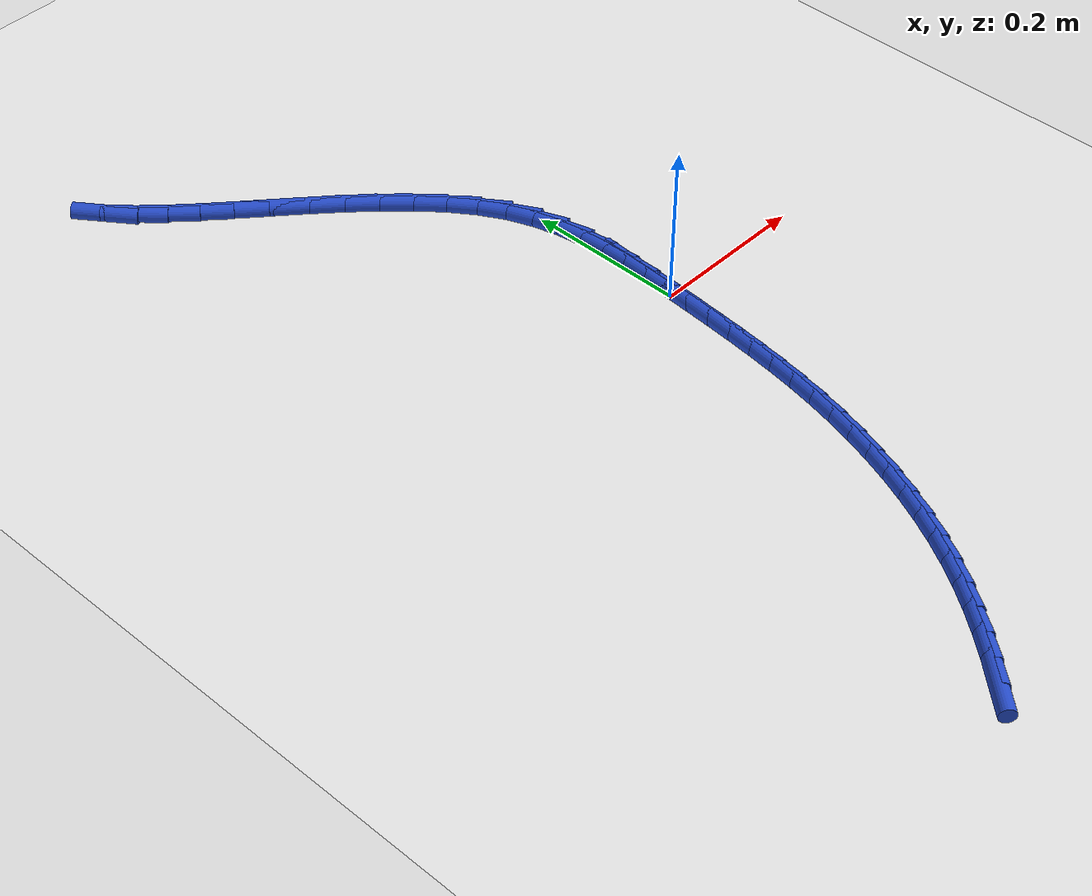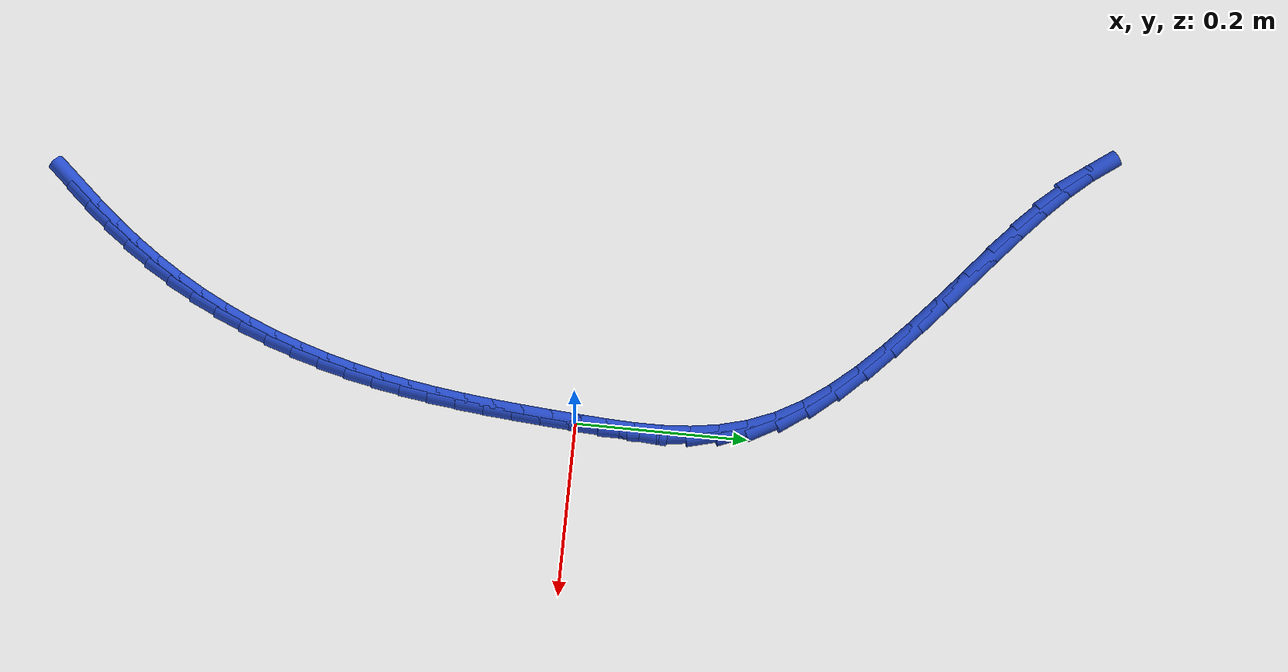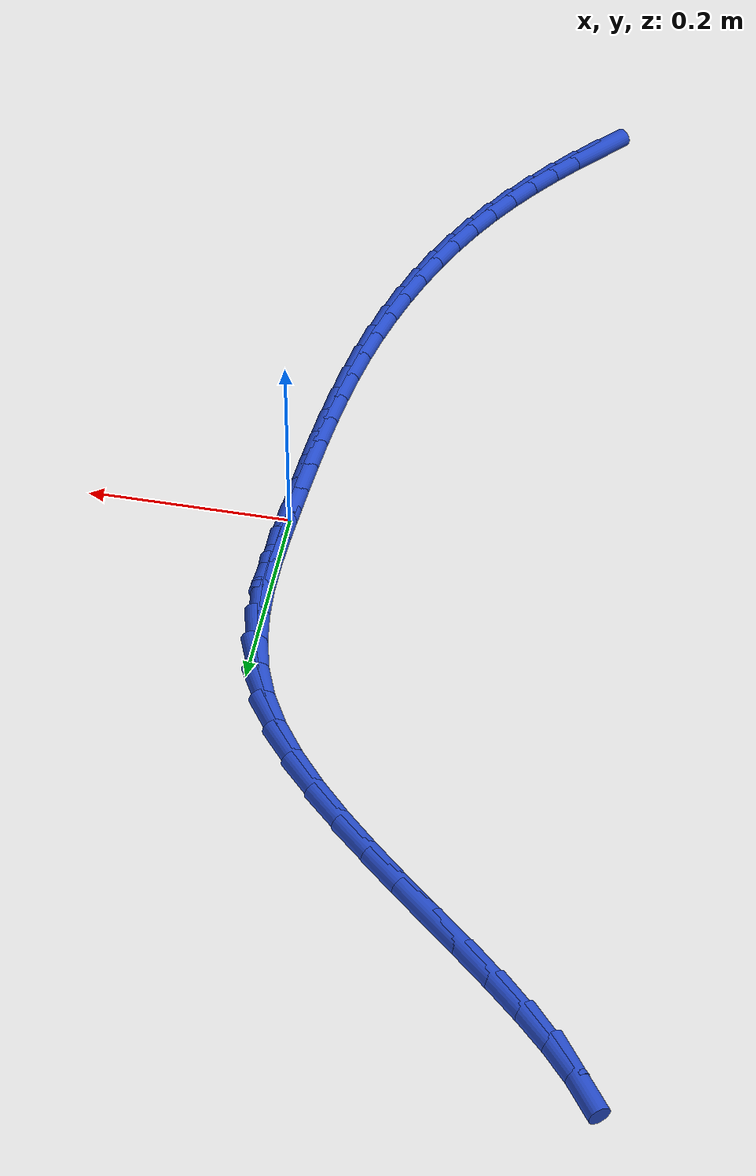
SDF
<sdf version="1.6">
 <world name="default">
  <model name="ground_plane">
   <static>1</static>
   <link name="link">
    <collision name="collision">
     <geometry><plane><normal>0 0 1</normal><size>100 100</size></plane></geometry>
     <surface><friction><ode><mu>100</mu><mu2>50</mu2></ode></friction></surface>
    </collision>
    <visual name="visual">
     <cast_shadows>0</cast_shadows>
     <geometry><plane><normal>0 0 1</normal><size>100 100</size></plane></geometry>
     <material>
      <script><uri>file://media/materials/scripts/gazebo.material</uri><name>Gazebo/WhiteGlow</name></script>
     </material>
    </visual>
   </link>
  </model>
  <model name="line">
   <link name="link_0">
    <pose>1.734723475976807e-18 -6.245004513516506e-17 0.01 0 1.57 1.5070492738437389</pose>
    <collision name="collision">
     <geometry><cylinder><radius>0.01</radius><length>0.08</length></cylinder></geometry>
    </collision>
    <visual name="visual">
     <material>
      <script><name>Gazebo/Blue</name><uri>file://media/materials/scripts/gazebo.material</uri></script>
     </material>
     <geometry><cylinder><radius>0.01</radius><length>0.08</length></cylinder></geometry>
    </visual>
   </link>
   <link name="link_1">
    <pose>0.002135402018232102 0.03345266330930316 0.01 0 1.57 1.5297991189124072</pose>
    <collision name="collision">
     <geometry><cylinder><radius>0.01</radius><length>0.08</length></cylinder></geometry>
    </collision>
    <visual name="visual">
     <material>
      <script><name>Gazebo/Blue</name><uri>file://media/materials/scripts/gazebo.material</uri></script>
     </material>
     <geometry><cylinder><radius>0.01</radius><length>0.08</length></cylinder></geometry>
    </visual>
   </link>
   <link name="link_2">
    <pose>0.0035087740667446364 0.06693305360533194 0.01 0 1.57 -1.5687584165227297</pose>
    <collision name="collision">
     <geometry><cylinder><radius>0.01</radius><length>0.08</length></cylinder></geometry>
    </collision>
    <visual name="visual">
     <material>
      <script><name>Gazebo/Blue</name><uri>file://media/materials/scripts/gazebo.material</uri></script>
     </material>
     <geometry><cylinder><radius>0.01</radius><length>0.08</length></cylinder></geometry>
    </visual>
   </link>
   <link name="link_3">
    <pose>0.0034407187152398306 0.10032768251573597 0.01 0 1.57 -1.5049523425660776</pose>
    <collision name="collision">
     <geometry><cylinder><radius>0.01</radius><length>0.08</length></cylinder></geometry>
    </collision>
    <visual name="visual">
     <material>
      <script><name>Gazebo/Blue</name><uri>file://media/materials/scripts/gazebo.material</uri></script>
     </material>
     <geometry><cylinder><radius>0.01</radius><length>0.08</length></cylinder></geometry>
    </visual>
   </link>
   <link name="link_4">
    <pose>0.0012518385334199114 0.1335230616681649 0.01 0 1.57 -1.4202202495845495</pose>
    <collision name="collision">
     <geometry><cylinder><radius>0.01</radius><length>0.08</length></cylinder></geometry>
    </collision>
    <visual name="visual">
     <material>
      <script><name>Gazebo/Blue</name><uri>file://media/materials/scripts/gazebo.material</uri></script>
     </material>
     <geometry><cylinder><radius>0.01</radius><length>0.08</length></cylinder></geometry>
    </visual>
   </link>
   <link name="link_5">
    <pose>-0.003737263909012894 0.16640570269026855 0.01 0 1.57 -1.3155611060862418</pose>
    <collision name="collision">
     <geometry><cylinder><radius>0.01</radius><length>0.08</length></cylinder></geometry>
    </collision>
    <visual name="visual">
     <material>
      <script><name>Gazebo/Blue</name><uri>file://media/materials/scripts/gazebo.material</uri></script>
     </material>
     <geometry><cylinder><radius>0.01</radius><length>0.08</length></cylinder></geometry>
    </visual>
   </link>
   <link name="link_6">
    <pose>-0.012205986042356357 0.19886211720969643 0.01 0 1.57 -1.1940483547402347</pose>
    <collision name="collision">
     <geometry><cylinder><radius>0.01</radius><length>0.08</length></cylinder></geometry>
    </collision>
    <visual name="visual">
     <material>
      <script><name>Gazebo/Blue</name><uri>file://media/materials/scripts/gazebo.material</uri></script>
     </material>
     <geometry><cylinder><radius>0.01</radius><length>0.08</length></cylinder></geometry>
    </visual>
   </link>
   <link name="link_7">
    <pose>-0.024833725296908263 0.23077881685409832 0.01 0 1.57 -1.0637630969239575</pose>
    <collision name="collision">
     <geometry><cylinder><radius>0.01</radius><length>0.08</length></cylinder></geometry>
    </collision>
    <visual name="visual">
     <material>
      <script><name>Gazebo/Blue</name><uri>file://media/materials/scripts/gazebo.material</uri></script>
     </material>
     <geometry><cylinder><radius>0.01</radius><length>0.08</length></cylinder></geometry>
    </visual>
   </link>
   <link name="link_8">
    <pose>-0.04220484899709303 0.26205164778055207 0.01 0 1.57 -0.9517172667167824</pose>
    <collision name="collision">
     <geometry><cylinder><radius>0.01</radius><length>0.08</length></cylinder></geometry>
    </collision>
    <visual name="visual">
     <material>
      <script><name>Gazebo/Blue</name><uri>file://media/materials/scripts/gazebo.material</uri></script>
     </material>
     <geometry><cylinder><radius>0.01</radius><length>0.08</length></cylinder></geometry>
    </visual>
   </link>
   <link name="link_9">
    <pose>-0.0640164712059616 0.2926636084396363 0.01 0 1.57 -0.8666658943532133</pose>
    <collision name="collision">
     <geometry><cylinder><radius>0.01</radius><length>0.08</length></cylinder></geometry>
    </collision>
    <visual name="visual">
     <material>
      <script><name>Gazebo/Blue</name><uri>file://media/materials/scripts/gazebo.material</uri></script>
     </material>
     <geometry><cylinder><radius>0.01</radius><length>0.08</length></cylinder></geometry>
    </visual>
   </link>
   <link name="link_10">
    <pose>-0.08948205486747239 0.3226452049171433 0.01 0 1.57 -0.8036611257417363</pose>
    <collision name="collision">
     <geometry><cylinder><radius>0.01</radius><length>0.08</length></cylinder></geometry>
    </collision>
    <visual name="visual">
     <material>
      <script><name>Gazebo/Blue</name><uri>file://media/materials/scripts/gazebo.material</uri></script>
     </material>
     <geometry><cylinder><radius>0.01</radius><length>0.08</length></cylinder></geometry>
    </visual>
   </link>
   <link name="link_11">
    <pose>-0.11781019244035959 0.3520274217123871 0.01 0 1.57 -0.7586290285794716</pose>
    <collision name="collision">
     <geometry><cylinder><radius>0.01</radius><length>0.08</length></cylinder></geometry>
    </collision>
    <visual name="visual">
     <material>
      <script><name>Gazebo/Blue</name><uri>file://media/materials/scripts/gazebo.material</uri></script>
     </material>
     <geometry><cylinder><radius>0.01</radius><length>0.08</length></cylinder></geometry>
    </visual>
   </link>
   <link name="link_12">
    <pose>-0.14820947638335744 0.38084124332468205 0.01 0 1.57 -0.7287066243767716</pose>
    <collision name="collision">
     <geometry><cylinder><radius>0.01</radius><length>0.08</length></cylinder></geometry>
    </collision>
    <visual name="visual">
     <material>
      <script><name>Gazebo/Blue</name><uri>file://media/materials/scripts/gazebo.material</uri></script>
     </material>
     <geometry><cylinder><radius>0.01</radius><length>0.08</length></cylinder></geometry>
    </visual>
   </link>
   <link name="link_13">
    <pose>-0.1798884991552002 0.4091176542533424 0.01 0 1.57 -0.7121632643164727</pose>
    <collision name="collision">
     <geometry><cylinder><radius>0.01</radius><length>0.08</length></cylinder></geometry>
    </collision>
    <visual name="visual">
     <material>
      <script><name>Gazebo/Blue</name><uri>file://media/materials/scripts/gazebo.material</uri></script>
     </material>
     <geometry><cylinder><radius>0.01</radius><length>0.08</length></cylinder></geometry>
    </visual>
   </link>
   <link name="link_14">
    <pose>-0.21205585321462195 0.4368876389976821 0.01 0 1.57 -0.7083060552038007</pose>
    <collision name="collision">
     <geometry><cylinder><radius>0.01</radius><length>0.08</length></cylinder></geometry>
    </collision>
    <visual name="visual">
     <material>
      <script><name>Gazebo/Blue</name><uri>file://media/materials/scripts/gazebo.material</uri></script>
     </material>
     <geometry><cylinder><radius>0.01</radius><length>0.08</length></cylinder></geometry>
    </visual>
   </link>
   <link name="link_15">
    <pose>-0.24392013102035703 0.4641821820570155 0.01 0 1.57 -0.717475798740363</pose>
    <collision name="collision">
     <geometry><cylinder><radius>0.01</radius><length>0.08</length></cylinder></geometry>
    </collision>
    <visual name="visual">
     <material>
      <script><name>Gazebo/Blue</name><uri>file://media/materials/scripts/gazebo.material</uri></script>
     </material>
     <geometry><cylinder><radius>0.01</radius><length>0.08</length></cylinder></geometry>
    </visual>
   </link>
   <link name="link_16">
    <pose>-0.2746899250311396 0.49103226793065685 0.01 0 1.57 -0.7411886175281001</pose>
    <collision name="collision">
     <geometry><cylinder><radius>0.01</radius><length>0.08</length></cylinder></geometry>
    </collision>
    <visual name="visual">
     <material>
      <script><name>Gazebo/Blue</name><uri>file://media/materials/scripts/gazebo.material</uri></script>
     </material>
     <geometry><cylinder><radius>0.01</radius><length>0.08</length></cylinder></geometry>
    </visual>
   </link>
   <link name="link_17">
    <pose>-0.3035738277057039 0.5174688811179202 0.01 0 1.57 -0.7824805162899104</pose>
    <collision name="collision">
     <geometry><cylinder><radius>0.01</radius><length>0.08</length></cylinder></geometry>
    </collision>
    <visual name="visual">
     <material>
      <script><name>Gazebo/Blue</name><uri>file://media/materials/scripts/gazebo.material</uri></script>
     </material>
     <geometry><cylinder><radius>0.01</radius><length>0.08</length></cylinder></geometry>
    </visual>
   </link>
   <link name="link_18">
    <pose>-0.3297804315027842 0.5435230061181201 0.01 0 1.57 -0.8465253045443074</pose>
    <collision name="collision">
     <geometry><cylinder><radius>0.01</radius><length>0.08</length></cylinder></geometry>
    </collision>
    <visual name="visual">
     <material>
      <script><name>Gazebo/Blue</name><uri>file://media/materials/scripts/gazebo.material</uri></script>
     </material>
     <geometry><cylinder><radius>0.01</radius><length>0.08</length></cylinder></geometry>
    </visual>
   </link>
   <link name="link_19">
    <pose>-0.35251832888111456 0.5692256274305701 0.01 0 1.57 -0.9415344928984355</pose>
    <collision name="collision">
     <geometry><cylinder><radius>0.01</radius><length>0.08</length></cylinder></geometry>
    </collision>
    <visual name="visual">
     <material>
      <script><name>Gazebo/Blue</name><uri>file://media/materials/scripts/gazebo.material</uri></script>
     </material>
     <geometry><cylinder><radius>0.01</radius><length>0.08</length></cylinder></geometry>
    </visual>
   </link>
   <link name="link_240">
    <pose>-0.22234050131407143 -0.6078545543773313 0.01 0 1.57 0.8387448802769176</pose>
    <collision name="collision">
     <geometry><cylinder><radius>0.01</radius><length>0.08</length></cylinder></geometry>
    </collision>
    <visual name="visual">
     <material>
      <script><name>Gazebo/Blue</name><uri>file://media/materials/scripts/gazebo.material</uri></script>
     </material>
     <geometry><cylinder><radius>0.01</radius><length>0.08</length></cylinder></geometry>
    </visual>
   </link>
   <link name="link_241">
    <pose>-0.20027838670227943 -0.5833034140538949 0.01 0 1.57 0.8734792606928575</pose>
    <collision name="collision">
     <geometry><cylinder><radius>0.01</radius><length>0.08</length></cylinder></geometry>
    </collision>
    <visual name="visual">
     <material>
      <script><name>Gazebo/Blue</name><uri>file://media/materials/scripts/gazebo.material</uri></script>
     </material>
     <geometry><cylinder><radius>0.01</radius><length>0.08</length></cylinder></geometry>
    </visual>
   </link>
   <link name="link_242">
    <pose>-0.17914511883025794 -0.5580760584192442 0.01 0 1.57 0.9118404386047962</pose>
    <collision name="collision">
     <geometry><cylinder><radius>0.01</radius><length>0.08</length></cylinder></geometry>
    </collision>
    <visual name="visual">
     <material>
      <script><name>Gazebo/Blue</name><uri>file://media/materials/scripts/gazebo.material</uri></script>
     </material>
     <geometry><cylinder><radius>0.01</radius><length>0.08</length></cylinder></geometry>
    </visual>
   </link>
   <link name="link_243">
    <pose>-0.1590350655424811 -0.532108612686695 0.01 0 1.57 0.9537687799810856</pose>
    <collision name="collision">
     <geometry><cylinder><radius>0.01</radius><length>0.08</length></cylinder></geometry>
    </collision>
    <visual name="visual">
     <material>
      <script><name>Gazebo/Blue</name><uri>file://media/materials/scripts/gazebo.material</uri></script>
     </material>
     <geometry><cylinder><radius>0.01</radius><length>0.08</length></cylinder></geometry>
    </visual>
   </link>
   <link name="link_244">
    <pose>-0.14004259468342334 -0.5053372020695628 0.01 0 1.57 0.9991406681440014</pose>
    <collision name="collision">
     <geometry><cylinder><radius>0.01</radius><length>0.08</length></cylinder></geometry>
    </collision>
    <visual name="visual">
     <material>
      <script><name>Gazebo/Blue</name><uri>file://media/materials/scripts/gazebo.material</uri></script>
     </material>
     <geometry><cylinder><radius>0.01</radius><length>0.08</length></cylinder></geometry>
    </visual>
   </link>
   <link name="link_245">
    <pose>-0.12226207409755842 -0.47769795178116226 0.01 0 1.57 1.0476076328293493</pose>
    <collision name="collision">
     <geometry><cylinder><radius>0.01</radius><length>0.08</length></cylinder></geometry>
    </collision>
    <visual name="visual">
     <material>
      <script><name>Gazebo/Blue</name><uri>file://media/materials/scripts/gazebo.material</uri></script>
     </material>
     <geometry><cylinder><radius>0.01</radius><length>0.08</length></cylinder></geometry>
    </visual>
   </link>
   <link name="link_246">
    <pose>-0.1057849835067338 -0.4491317466955544 0.01 0 1.57 1.0961739047245722</pose>
    <collision name="collision">
     <geometry><cylinder><radius>0.01</radius><length>0.08</length></cylinder></geometry>
    </collision>
    <visual name="visual">
     <material>
      <script><name>Gazebo/Blue</name><uri>file://media/materials/scripts/gazebo.material</uri></script>
     </material>
     <geometry><cylinder><radius>0.01</radius><length>0.08</length></cylinder></geometry>
    </visual>
   </link>
   <link name="link_247">
    <pose>-0.09064777409499154 -0.41967015937735946 0.01 0 1.57 1.1424456848009705</pose>
    <collision name="collision">
     <geometry><cylinder><radius>0.01</radius><length>0.08</length></cylinder></geometry>
    </collision>
    <visual name="visual">
     <material>
      <script><name>Gazebo/Blue</name><uri>file://media/materials/scripts/gazebo.material</uri></script>
     </material>
     <geometry><cylinder><radius>0.01</radius><length>0.08</length></cylinder></geometry>
    </visual>
   </link>
   <link name="link_248">
    <pose>-0.07683754227835136 -0.38942609964108343 0.01 0 1.57 1.1865692361802542</pose>
    <collision name="collision">
     <geometry><cylinder><radius>0.01</radius><length>0.08</length></cylinder></geometry>
    </collision>
    <visual name="visual">
     <material>
      <script><name>Gazebo/Blue</name><uri>file://media/materials/scripts/gazebo.material</uri></script>
     </material>
     <geometry><cylinder><radius>0.01</radius><length>0.08</length></cylinder></geometry>
    </visual>
   </link>
   <link name="link_249">
    <pose>-0.06433963531801919 -0.358515359929353 0.01 0 1.57 1.2287892743951407</pose>
    <collision name="collision">
     <geometry><cylinder><radius>0.01</radius><length>0.08</length></cylinder></geometry>
    </collision>
    <visual name="visual">
     <material>
      <script><name>Gazebo/Blue</name><uri>file://media/materials/scripts/gazebo.material</uri></script>
     </material>
     <geometry><cylinder><radius>0.01</radius><length>0.08</length></cylinder></geometry>
    </visual>
   </link>
   <link name="link_250">
    <pose>-0.05313940047520093 -0.3270537326847949 0.01 0 1.57 1.2693547789082673</pose>
    <collision name="collision">
     <geometry><cylinder><radius>0.01</radius><length>0.08</length></cylinder></geometry>
    </collision>
    <visual name="visual">
     <material>
      <script><name>Gazebo/Blue</name><uri>file://media/materials/scripts/gazebo.material</uri></script>
     </material>
     <geometry><cylinder><radius>0.01</radius><length>0.08</length></cylinder></geometry>
    </visual>
   </link>
   <link name="link_251">
    <pose>-0.043222185011102546 -0.29515701035003544 0.01 0 1.57 1.3085165082091381</pose>
    <collision name="collision">
     <geometry><cylinder><radius>0.01</radius><length>0.08</length></cylinder></geometry>
    </collision>
    <visual name="visual">
     <material>
      <script><name>Gazebo/Blue</name><uri>file://media/materials/scripts/gazebo.material</uri></script>
     </material>
     <geometry><cylinder><radius>0.01</radius><length>0.08</length></cylinder></geometry>
    </visual>
   </link>
   <link name="link_252">
    <pose>-0.034573336186929704 -0.2629409853677003 0.01 0 1.57 1.3465147793660204</pose>
    <collision name="collision">
     <geometry><cylinder><radius>0.01</radius><length>0.08</length></cylinder></geometry>
    </collision>
    <visual name="visual">
     <material>
      <script><name>Gazebo/Blue</name><uri>file://media/materials/scripts/gazebo.material</uri></script>
     </material>
     <geometry><cylinder><radius>0.01</radius><length>0.08</length></cylinder></geometry>
    </visual>
   </link>
   <link name="link_253">
    <pose>-0.027177721293023937 -0.23052105665898678 0.01 0 1.57 1.382407311437234</pose>
    <collision name="collision">
     <geometry><cylinder><radius>0.01</radius><length>0.08</length></cylinder></geometry>
    </collision>
    <visual name="visual">
     <material>
      <script><name>Gazebo/Blue</name><uri>file://media/materials/scripts/gazebo.material</uri></script>
     </material>
     <geometry><cylinder><radius>0.01</radius><length>0.08</length></cylinder></geometry>
    </visual>
   </link>
   <link name="link_254">
    <pose>-0.020972545336551476 -0.1979735455025419 0.01 0 1.57 1.4140011050150414</pose>
    <collision name="collision">
     <geometry><cylinder><radius>0.01</radius><length>0.08</length></cylinder></geometry>
    </collision>
    <visual name="visual">
     <material>
      <script><name>Gazebo/Blue</name><uri>file://media/materials/scripts/gazebo.material</uri></script>
     </material>
     <geometry><cylinder><radius>0.01</radius><length>0.08</length></cylinder></geometry>
    </visual>
   </link>
   <link name="link_255">
    <pose>-0.015807577331001403 -0.16530308562284882 0.01 0 1.57 1.4408971870876222</pose>
    <collision name="collision">
     <geometry><cylinder><radius>0.01</radius><length>0.08</length></cylinder></geometry>
    </collision>
    <visual name="visual">
     <material>
      <script><name>Gazebo/Blue</name><uri>file://media/materials/scripts/gazebo.material</uri></script>
     </material>
     <geometry><cylinder><radius>0.01</radius><length>0.08</length></cylinder></geometry>
    </visual>
   </link>
   <link name="link_256">
    <pose>-0.011523221374456947 -0.13250663258060308 0.01 0 1.57 1.462991558782798</pose>
    <collision name="collision">
     <geometry><cylinder><radius>0.01</radius><length>0.08</length></cylinder></geometry>
    </collision>
    <visual name="visual">
     <material>
      <script><name>Gazebo/Blue</name><uri>file://media/materials/scripts/gazebo.material</uri></script>
     </material>
     <geometry><cylinder><radius>0.01</radius><length>0.08</length></cylinder></geometry>
    </visual>
   </link>
   <link name="link_257">
    <pose>-0.007959881565001343 -0.09958114193649992 0.01 0 1.57 1.4802358776080868</pose>
    <collision name="collision">
     <geometry><cylinder><radius>0.01</radius><length>0.08</length></cylinder></geometry>
    </collision>
    <visual name="visual">
     <material>
      <script><name>Gazebo/Blue</name><uri>file://media/materials/scripts/gazebo.material</uri></script>
     </material>
     <geometry><cylinder><radius>0.01</radius><length>0.08</length></cylinder></geometry>
    </visual>
   </link>
   <link name="link_258">
    <pose>-0.00495796200071782 -0.0665235692512347 0.01 0 1.57 1.4926226132688472</pose>
    <collision name="collision">
     <geometry><cylinder><radius>0.01</radius><length>0.08</length></cylinder></geometry>
    </collision>
    <visual name="visual">
     <material>
      <script><name>Gazebo/Blue</name><uri>file://media/materials/scripts/gazebo.material</uri></script>
     </material>
     <geometry><cylinder><radius>0.01</radius><length>0.08</length></cylinder></geometry>
    </visual>
   </link>
   <link name="link_259">
    <pose>-0.0023578667796896225 -0.03333087008550289 0.01 0 1.57 1.5001727467129797</pose>
    <collision name="collision">
     <geometry><cylinder><radius>0.01</radius><length>0.08</length></cylinder></geometry>
    </collision>
    <visual name="visual">
     <material>
      <script><name>Gazebo/Blue</name><uri>file://media/materials/scripts/gazebo.material</uri></script>
     </material>
     <geometry><cylinder><radius>0.01</radius><length>0.08</length></cylinder></geometry>
    </visual>
   </link>
   <link name="link_260">
    <pose>1.9081958235744878e-17 1.8735013540549517e-16 0.01 0 1.57 1.5029266475868686</pose>
    <collision name="collision">
     <geometry><cylinder><radius>0.01</radius><length>0.08</length></cylinder></geometry>
    </collision>
    <visual name="visual">
     <material>
      <script><name>Gazebo/Blue</name><uri>file://media/materials/scripts/gazebo.material</uri></script>
     </material>
     <geometry><cylinder><radius>0.01</radius><length>0.08</length></cylinder></geometry>
    </visual>
   </link>
   <link name="link_261">
    <pose>0.0022752342402678678 0.03347208544457911 0.01 0 1.57 1.5009383457715446</pose>
    <collision name="collision">
     <geometry><cylinder><radius>0.01</radius><length>0.08</length></cylinder></geometry>
    </collision>
    <visual name="visual">
     <material>
      <script><name>Gazebo/Blue</name><uri>file://media/materials/scripts/gazebo.material</uri></script>
     </material>
     <geometry><cylinder><radius>0.01</radius><length>0.08</length></cylinder></geometry>
    </visual>
   </link>
   <link name="link_262">
    <pose>0.004627431843030692 0.06708843068753856 0.01 0 1.57 1.5019302907944203</pose>
    <collision name="collision">
     <geometry><cylinder><radius>0.01</radius><length>0.08</length></cylinder></geometry>
    </collision>
    <visual name="visual">
     <material>
      <script><name>Gazebo/Blue</name><uri>file://media/materials/scripts/gazebo.material</uri></script>
     </material>
     <geometry><cylinder><radius>0.01</radius><length>0.08</length></cylinder></geometry>
    </visual>
   </link>
  </model>
 </world>
</sdf>
